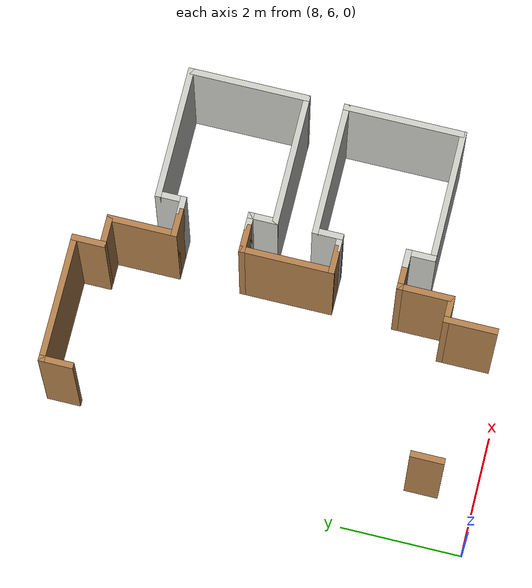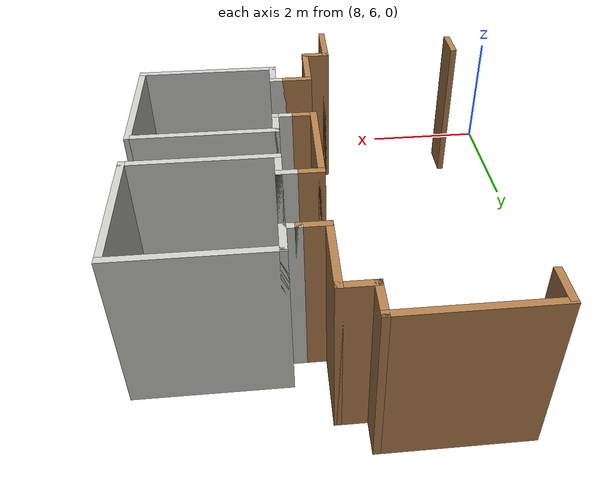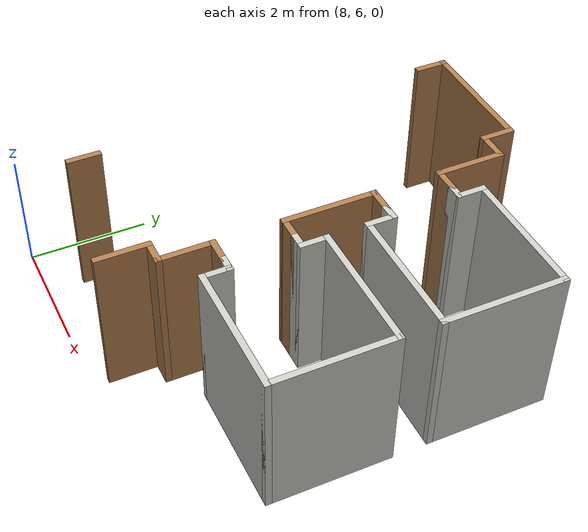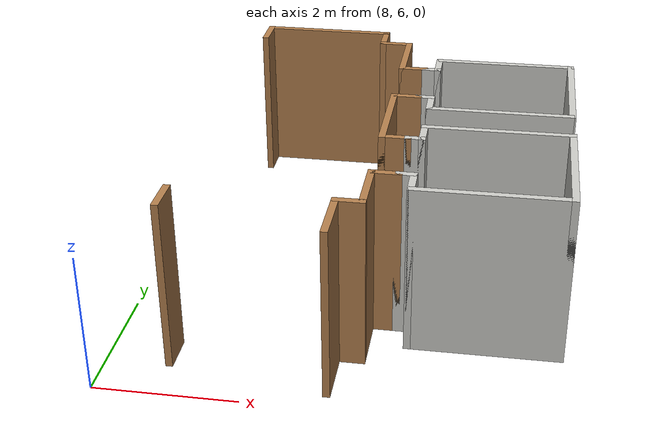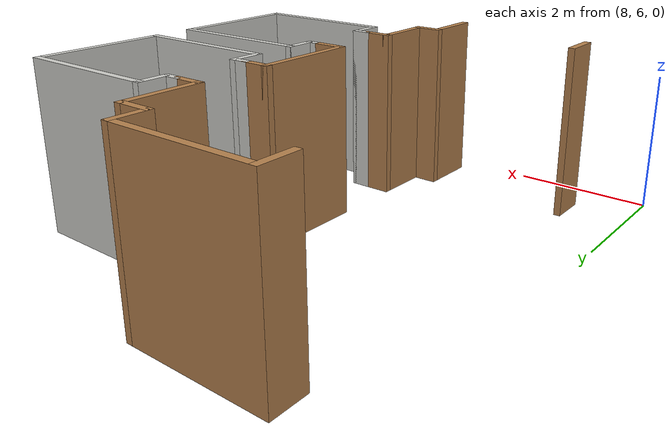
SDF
<sdf version="1.7">
 <model name="miraikan_3F_gate_and_elevator">
  <link name="Wall_151">
   <pose>6.6375 12.44 0 0 -0 1.5708</pose>
   <visual name="Wall_151_Visual">
    <pose>0 0 1.25 0 -0 0</pose>
    <geometry><box><size>0.56 0.1 2.5</size></box></geometry>
    <material>
     <script><uri>file://media/materials/scripts/gazebo.material</uri><name>Gazebo/Wood</name></script>
     <ambient>1 1 1 1</ambient>
     <shader type="pixel"/>
    </material>
    <meta><layer>0</layer></meta>
   </visual>
   <collision name="Wall_151_Collision">
    <pose>0 0 1.25 0 -0 0</pose>
    <geometry><box><size>0.56 0.1 2.5</size></box></geometry>
    <surface>
     <friction>
      <ode><mu>1</mu><mu2>1</mu2><fdir1>0 0 0</fdir1><slip1>0</slip1><slip2>0</slip2></ode>
      <torsional>
       <coefficient>1</coefficient>
       <patch_radius>0</patch_radius>
       <surface_radius>0</surface_radius>
       <use_patch_radius>1</use_patch_radius>
       <ode><slip>0</slip></ode>
      </torsional>
     </friction>
     <bounce><restitution_coefficient>0</restitution_coefficient><threshold>1e+06</threshold></bounce>
     <contact>
      <collide_without_contact>0</collide_without_contact>
      <collide_without_contact_bitmask>1</collide_without_contact_bitmask>
      <collide_bitmask>1</collide_bitmask>
      <ode>
       <soft_cfm>0</soft_cfm>
       <soft_erp>0.2</soft_erp>
       <kp>1e+13</kp>
       <kd>1</kd>
       <max_vel>0.01</max_vel>
       <min_depth>0</min_depth>
      </ode>
      <bullet>
       <split_impulse>1</split_impulse>
       <split_impulse_penetration_threshold>-0.01</split_impulse_penetration_threshold>
       <soft_cfm>0</soft_cfm>
       <soft_erp>0.2</soft_erp>
       <kp>1e+13</kp>
       <kd>1</kd>
      </bullet>
     </contact>
    </surface>
   </collision>
  </link>
  <link name="Wall_155">
   <pose>8.6575 12.44 0 0 0 -1.5708</pose>
   <visual name="Wall_155_Visual">
    <pose>0 0 1.25 0 -0 0</pose>
    <geometry><box><size>0.56 0.1 2.5</size></box></geometry>
    <material>
     <script><uri>file://media/materials/scripts/gazebo.material</uri><name>Gazebo/Wood</name></script>
     <ambient>1 1 1 1</ambient>
     <shader type="pixel"/>
    </material>
    <meta><layer>0</layer></meta>
   </visual>
   <collision name="Wall_155_Collision">
    <pose>0 0 1.25 0 -0 0</pose>
    <geometry><box><size>0.56 0.1 2.5</size></box></geometry>
    <surface>
     <friction>
      <ode><mu>1</mu><mu2>1</mu2><fdir1>0 0 0</fdir1><slip1>0</slip1><slip2>0</slip2></ode>
      <torsional>
       <coefficient>1</coefficient>
       <patch_radius>0</patch_radius>
       <surface_radius>0</surface_radius>
       <use_patch_radius>1</use_patch_radius>
       <ode><slip>0</slip></ode>
      </torsional>
     </friction>
     <bounce><restitution_coefficient>0</restitution_coefficient><threshold>1e+06</threshold></bounce>
     <contact>
      <collide_without_contact>0</collide_without_contact>
      <collide_without_contact_bitmask>1</collide_without_contact_bitmask>
      <collide_bitmask>1</collide_bitmask>
      <ode>
       <soft_cfm>0</soft_cfm>
       <soft_erp>0.2</soft_erp>
       <kp>1e+13</kp>
       <kd>1</kd>
       <max_vel>0.01</max_vel>
       <min_depth>0</min_depth>
      </ode>
      <bullet>
       <split_impulse>1</split_impulse>
       <split_impulse_penetration_threshold>-0.01</split_impulse_penetration_threshold>
       <soft_cfm>0</soft_cfm>
       <soft_erp>0.2</soft_erp>
       <kp>1e+13</kp>
       <kd>1</kd>
      </bullet>
     </contact>
    </surface>
   </collision>
  </link>
  <link name="Wall_157">
   <pose>8.8775 12.21 0 0 -0 0</pose>
   <visual name="Wall_157_Visual">
    <pose>0 0 1.25 0 -0 0</pose>
    <geometry><box><size>0.54 0.1 2.5</size></box></geometry>
    <material>
     <script><uri>file://media/materials/scripts/gazebo.material</uri><name>Gazebo/Wood</name></script>
     <ambient>1 1 1 1</ambient>
     <shader type="pixel"/>
    </material>
    <meta><layer>0</layer></meta>
   </visual>
   <collision name="Wall_157_Collision">
    <pose>0 0 1.25 0 -0 0</pose>
    <geometry><box><size>0.54 0.1 2.5</size></box></geometry>
    <surface>
     <friction>
      <ode><mu>1</mu><mu2>1</mu2><fdir1>0 0 0</fdir1><slip1>0</slip1><slip2>0</slip2></ode>
      <torsional>
       <coefficient>1</coefficient>
       <patch_radius>0</patch_radius>
       <surface_radius>0</surface_radius>
       <use_patch_radius>1</use_patch_radius>
       <ode><slip>0</slip></ode>
      </torsional>
     </friction>
     <bounce><restitution_coefficient>0</restitution_coefficient><threshold>1e+06</threshold></bounce>
     <contact>
      <collide_without_contact>0</collide_without_contact>
      <collide_without_contact_bitmask>1</collide_without_contact_bitmask>
      <collide_bitmask>1</collide_bitmask>
      <ode>
       <soft_cfm>0</soft_cfm>
       <soft_erp>0.2</soft_erp>
       <kp>1e+13</kp>
       <kd>1</kd>
       <max_vel>0.01</max_vel>
       <min_depth>0</min_depth>
      </ode>
      <bullet>
       <split_impulse>1</split_impulse>
       <split_impulse_penetration_threshold>-0.01</split_impulse_penetration_threshold>
       <soft_cfm>0</soft_cfm>
       <soft_erp>0.2</soft_erp>
       <kp>1e+13</kp>
       <kd>1</kd>
      </bullet>
     </contact>
    </surface>
   </collision>
  </link>
  <link name="Wall_159">
   <pose>9.0975 11.685 0 0 0 -1.5708</pose>
   <visual name="Wall_159_Visual">
    <pose>0 0 1.25 0 -0 0</pose>
    <geometry><box><size>1.15 0.1 2.5</size></box></geometry>
    <material>
     <script><uri>file://media/materials/scripts/gazebo.material</uri><name>Gazebo/Wood</name></script>
     <ambient>1 1 1 1</ambient>
     <shader type="pixel"/>
    </material>
    <meta><layer>0</layer></meta>
   </visual>
   <collision name="Wall_159_Collision">
    <pose>0 0 1.25 0 -0 0</pose>
    <geometry><box><size>1.15 0.1 2.5</size></box></geometry>
    <surface>
     <friction>
      <ode><mu>1</mu><mu2>1</mu2><fdir1>0 0 0</fdir1><slip1>0</slip1><slip2>0</slip2></ode>
      <torsional>
       <coefficient>1</coefficient>
       <patch_radius>0</patch_radius>
       <surface_radius>0</surface_radius>
       <use_patch_radius>1</use_patch_radius>
       <ode><slip>0</slip></ode>
      </torsional>
     </friction>
     <bounce><restitution_coefficient>0</restitution_coefficient><threshold>1e+06</threshold></bounce>
     <contact>
      <collide_without_contact>0</collide_without_contact>
      <collide_without_contact_bitmask>1</collide_without_contact_bitmask>
      <collide_bitmask>1</collide_bitmask>
      <ode>
       <soft_cfm>0</soft_cfm>
       <soft_erp>0.2</soft_erp>
       <kp>1e+13</kp>
       <kd>1</kd>
       <max_vel>0.01</max_vel>
       <min_depth>0</min_depth>
      </ode>
      <bullet>
       <split_impulse>1</split_impulse>
       <split_impulse_penetration_threshold>-0.01</split_impulse_penetration_threshold>
       <soft_cfm>0</soft_cfm>
       <soft_erp>0.2</soft_erp>
       <kp>1e+13</kp>
       <kd>1</kd>
      </bullet>
     </contact>
    </surface>
   </collision>
  </link>
  <link name="Wall_161">
   <pose>9.2825 11.16 0 0 -0 0</pose>
   <visual name="Wall_161_Visual">
    <pose>0 0 1.25 0 -0 0</pose>
    <geometry><box><size>0.47 0.1 2.5</size></box></geometry>
    <material>
     <script><uri>file://media/materials/scripts/gazebo.material</uri><name>Gazebo/Wood</name></script>
     <ambient>1 1 1 1</ambient>
     <shader type="pixel"/>
    </material>
    <meta><layer>0</layer></meta>
   </visual>
   <collision name="Wall_161_Collision">
    <pose>0 0 1.25 0 -0 0</pose>
    <geometry><box><size>0.47 0.1 2.5</size></box></geometry>
    <surface>
     <friction>
      <ode><mu>1</mu><mu2>1</mu2><fdir1>0 0 0</fdir1><slip1>0</slip1><slip2>0</slip2></ode>
      <torsional>
       <coefficient>1</coefficient>
       <patch_radius>0</patch_radius>
       <surface_radius>0</surface_radius>
       <use_patch_radius>1</use_patch_radius>
       <ode><slip>0</slip></ode>
      </torsional>
     </friction>
     <bounce><restitution_coefficient>0</restitution_coefficient><threshold>1e+06</threshold></bounce>
     <contact>
      <collide_without_contact>0</collide_without_contact>
      <collide_without_contact_bitmask>1</collide_without_contact_bitmask>
      <collide_bitmask>1</collide_bitmask>
      <ode>
       <soft_cfm>0</soft_cfm>
       <soft_erp>0.2</soft_erp>
       <kp>1e+13</kp>
       <kd>1</kd>
       <max_vel>0.01</max_vel>
       <min_depth>0</min_depth>
      </ode>
      <bullet>
       <split_impulse>1</split_impulse>
       <split_impulse_penetration_threshold>-0.01</split_impulse_penetration_threshold>
       <soft_cfm>0</soft_cfm>
       <soft_erp>0.2</soft_erp>
       <kp>1e+13</kp>
       <kd>1</kd>
      </bullet>
     </contact>
    </surface>
   </collision>
  </link>
  <link name="Wall_165">
   <pose>9.2825 10.06 0 0 -0 3.14159</pose>
   <visual name="Wall_165_Visual">
    <pose>0 0 1.25 0 -0 0</pose>
    <geometry><box><size>0.47 0.1 2.5</size></box></geometry>
    <material>
     <script><uri>file://media/materials/scripts/gazebo.material</uri><name>Gazebo/Wood</name></script>
     <ambient>1 1 1 1</ambient>
     <shader type="pixel"/>
    </material>
    <meta><layer>0</layer></meta>
   </visual>
   <collision name="Wall_165_Collision">
    <pose>0 0 1.25 0 -0 0</pose>
    <geometry><box><size>0.47 0.1 2.5</size></box></geometry>
    <surface>
     <friction>
      <ode><mu>1</mu><mu2>1</mu2><fdir1>0 0 0</fdir1><slip1>0</slip1><slip2>0</slip2></ode>
      <torsional>
       <coefficient>1</coefficient>
       <patch_radius>0</patch_radius>
       <surface_radius>0</surface_radius>
       <use_patch_radius>1</use_patch_radius>
       <ode><slip>0</slip></ode>
      </torsional>
     </friction>
     <bounce><restitution_coefficient>0</restitution_coefficient><threshold>1e+06</threshold></bounce>
     <contact>
      <collide_without_contact>0</collide_without_contact>
      <collide_without_contact_bitmask>1</collide_without_contact_bitmask>
      <collide_bitmask>1</collide_bitmask>
      <ode>
       <soft_cfm>0</soft_cfm>
       <soft_erp>0.2</soft_erp>
       <kp>1e+13</kp>
       <kd>1</kd>
       <max_vel>0.01</max_vel>
       <min_depth>0</min_depth>
      </ode>
      <bullet>
       <split_impulse>1</split_impulse>
       <split_impulse_penetration_threshold>-0.01</split_impulse_penetration_threshold>
       <soft_cfm>0</soft_cfm>
       <soft_erp>0.2</soft_erp>
       <kp>1e+13</kp>
       <kd>1</kd>
      </bullet>
     </contact>
    </surface>
   </collision>
  </link>
  <link name="Wall_167">
   <pose>9.0975 9.335 0 0 0 -1.5708</pose>
   <visual name="Wall_167_Visual">
    <pose>0 0 1.25 0 -0 0</pose>
    <geometry><box><size>1.55 0.1 2.5</size></box></geometry>
    <material>
     <script><uri>file://media/materials/scripts/gazebo.material</uri><name>Gazebo/Wood</name></script>
     <ambient>1 1 1 1</ambient>
     <shader type="pixel"/>
    </material>
    <meta><layer>0</layer></meta>
   </visual>
   <collision name="Wall_167_Collision">
    <pose>0 0 1.25 0 -0 0</pose>
    <geometry><box><size>1.55 0.1 2.5</size></box></geometry>
    <surface>
     <friction>
      <ode><mu>1</mu><mu2>1</mu2><fdir1>0 0 0</fdir1><slip1>0</slip1><slip2>0</slip2></ode>
      <torsional>
       <coefficient>1</coefficient>
       <patch_radius>0</patch_radius>
       <surface_radius>0</surface_radius>
       <use_patch_radius>1</use_patch_radius>
       <ode><slip>0</slip></ode>
      </torsional>
     </friction>
     <bounce><restitution_coefficient>0</restitution_coefficient><threshold>1e+06</threshold></bounce>
     <contact>
      <collide_without_contact>0</collide_without_contact>
      <collide_without_contact_bitmask>1</collide_without_contact_bitmask>
      <collide_bitmask>1</collide_bitmask>
      <ode>
       <soft_cfm>0</soft_cfm>
       <soft_erp>0.2</soft_erp>
       <kp>1e+13</kp>
       <kd>1</kd>
       <max_vel>0.01</max_vel>
       <min_depth>0</min_depth>
      </ode>
      <bullet>
       <split_impulse>1</split_impulse>
       <split_impulse_penetration_threshold>-0.01</split_impulse_penetration_threshold>
       <soft_cfm>0</soft_cfm>
       <soft_erp>0.2</soft_erp>
       <kp>1e+13</kp>
       <kd>1</kd>
      </bullet>
     </contact>
    </surface>
   </collision>
  </link>
  <link name="Wall_169">
   <pose>9.2825 8.61 0 0 -0 0</pose>
   <visual name="Wall_169_Visual">
    <pose>0 0 1.25 0 -0 0</pose>
    <geometry><box><size>0.47 0.1 2.5</size></box></geometry>
    <material>
     <script><uri>file://media/materials/scripts/gazebo.material</uri><name>Gazebo/Wood</name></script>
     <ambient>1 1 1 1</ambient>
     <shader type="pixel"/>
    </material>
    <meta><layer>0</layer></meta>
   </visual>
   <collision name="Wall_169_Collision">
    <pose>0 0 1.25 0 -0 0</pose>
    <geometry><box><size>0.47 0.1 2.5</size></box></geometry>
    <surface>
     <friction>
      <ode><mu>1</mu><mu2>1</mu2><fdir1>0 0 0</fdir1><slip1>0</slip1><slip2>0</slip2></ode>
      <torsional>
       <coefficient>1</coefficient>
       <patch_radius>0</patch_radius>
       <surface_radius>0</surface_radius>
       <use_patch_radius>1</use_patch_radius>
       <ode><slip>0</slip></ode>
      </torsional>
     </friction>
     <bounce><restitution_coefficient>0</restitution_coefficient><threshold>1e+06</threshold></bounce>
     <contact>
      <collide_without_contact>0</collide_without_contact>
      <collide_without_contact_bitmask>1</collide_without_contact_bitmask>
      <collide_bitmask>1</collide_bitmask>
      <ode>
       <soft_cfm>0</soft_cfm>
       <soft_erp>0.2</soft_erp>
       <kp>1e+13</kp>
       <kd>1</kd>
       <max_vel>0.01</max_vel>
       <min_depth>0</min_depth>
      </ode>
      <bullet>
       <split_impulse>1</split_impulse>
       <split_impulse_penetration_threshold>-0.01</split_impulse_penetration_threshold>
       <soft_cfm>0</soft_cfm>
       <soft_erp>0.2</soft_erp>
       <kp>1e+13</kp>
       <kd>1</kd>
      </bullet>
     </contact>
    </surface>
   </collision>
  </link>
  <link name="Wall_173">
   <pose>9.2825 7.51 0 0 -0 3.14159</pose>
   <visual name="Wall_173_Visual">
    <pose>0 0 1.25 0 -0 0</pose>
    <geometry><box><size>0.47 0.1 2.5</size></box></geometry>
    <material>
     <script><uri>file://media/materials/scripts/gazebo.material</uri><name>Gazebo/Wood</name></script>
     <ambient>1 1 1 1</ambient>
     <shader type="pixel"/>
    </material>
    <meta><layer>0</layer></meta>
   </visual>
   <collision name="Wall_173_Collision">
    <pose>0 0 1.25 0 -0 0</pose>
    <geometry><box><size>0.47 0.1 2.5</size></box></geometry>
    <surface>
     <friction>
      <ode><mu>1</mu><mu2>1</mu2><fdir1>0 0 0</fdir1><slip1>0</slip1><slip2>0</slip2></ode>
      <torsional>
       <coefficient>1</coefficient>
       <patch_radius>0</patch_radius>
       <surface_radius>0</surface_radius>
       <use_patch_radius>1</use_patch_radius>
       <ode><slip>0</slip></ode>
      </torsional>
     </friction>
     <bounce><restitution_coefficient>0</restitution_coefficient><threshold>1e+06</threshold></bounce>
     <contact>
      <collide_without_contact>0</collide_without_contact>
      <collide_without_contact_bitmask>1</collide_without_contact_bitmask>
      <collide_bitmask>1</collide_bitmask>
      <ode>
       <soft_cfm>0</soft_cfm>
       <soft_erp>0.2</soft_erp>
       <kp>1e+13</kp>
       <kd>1</kd>
       <max_vel>0.01</max_vel>
       <min_depth>0</min_depth>
      </ode>
      <bullet>
       <split_impulse>1</split_impulse>
       <split_impulse_penetration_threshold>-0.01</split_impulse_penetration_threshold>
       <soft_cfm>0</soft_cfm>
       <soft_erp>0.2</soft_erp>
       <kp>1e+13</kp>
       <kd>1</kd>
      </bullet>
     </contact>
    </surface>
   </collision>
  </link>
  <link name="Wall_178">
   <pose>9.0975 7.095 0 0 0 -1.5708</pose>
   <visual name="Wall_178_Visual">
    <pose>0 0 1.25 0 -0 0</pose>
    <geometry><box><size>0.93 0.1 2.5</size></box></geometry>
    <material>
     <script><uri>file://media/materials/scripts/gazebo.material</uri><name>Gazebo/Wood</name></script>
     <ambient>1 1 1 1</ambient>
     <shader type="pixel"/>
    </material>
    <meta><layer>0</layer></meta>
   </visual>
   <collision name="Wall_178_Collision">
    <pose>0 0 1.25 0 -0 0</pose>
    <geometry><box><size>0.93 0.1 2.5</size></box></geometry>
    <surface>
     <friction>
      <ode><mu>1</mu><mu2>1</mu2><fdir1>0 0 0</fdir1><slip1>0</slip1><slip2>0</slip2></ode>
      <torsional>
       <coefficient>1</coefficient>
       <patch_radius>0</patch_radius>
       <surface_radius>0</surface_radius>
       <use_patch_radius>1</use_patch_radius>
       <ode><slip>0</slip></ode>
      </torsional>
     </friction>
     <bounce><restitution_coefficient>0</restitution_coefficient><threshold>1e+06</threshold></bounce>
     <contact>
      <collide_without_contact>0</collide_without_contact>
      <collide_without_contact_bitmask>1</collide_without_contact_bitmask>
      <collide_bitmask>1</collide_bitmask>
      <ode>
       <soft_cfm>0</soft_cfm>
       <soft_erp>0.2</soft_erp>
       <kp>1e+13</kp>
       <kd>1</kd>
       <max_vel>0.01</max_vel>
       <min_depth>0</min_depth>
      </ode>
      <bullet>
       <split_impulse>1</split_impulse>
       <split_impulse_penetration_threshold>-0.01</split_impulse_penetration_threshold>
       <soft_cfm>0</soft_cfm>
       <soft_erp>0.2</soft_erp>
       <kp>1e+13</kp>
       <kd>1</kd>
      </bullet>
     </contact>
    </surface>
   </collision>
  </link>
  <link name="Wall_264">
   <pose>8.9225 6.68 0 0 -0 3.14159</pose>
   <visual name="Wall_264_Visual">
    <pose>0 0 1.25 0 -0 0</pose>
    <geometry><box><size>0.45 0.1 2.5</size></box></geometry>
    <material>
     <script><uri>file://media/materials/scripts/gazebo.material</uri><name>Gazebo/Wood</name></script>
     <ambient>1 1 1 1</ambient>
     <shader type="pixel"/>
    </material>
    <meta><layer>0</layer></meta>
   </visual>
   <collision name="Wall_264_Collision">
    <pose>0 0 1.25 0 -0 0</pose>
    <geometry><box><size>0.45 0.1 2.5</size></box></geometry>
    <surface>
     <friction>
      <ode><mu>1</mu><mu2>1</mu2><fdir1>0 0 0</fdir1><slip1>0</slip1><slip2>0</slip2></ode>
      <torsional>
       <coefficient>1</coefficient>
       <patch_radius>0</patch_radius>
       <surface_radius>0</surface_radius>
       <use_patch_radius>1</use_patch_radius>
       <ode><slip>0</slip></ode>
      </torsional>
     </friction>
     <bounce><restitution_coefficient>0</restitution_coefficient><threshold>1e+06</threshold></bounce>
     <contact>
      <collide_without_contact>0</collide_without_contact>
      <collide_without_contact_bitmask>1</collide_without_contact_bitmask>
      <collide_bitmask>1</collide_bitmask>
      <ode>
       <soft_cfm>0</soft_cfm>
       <soft_erp>0.2</soft_erp>
       <kp>1e+13</kp>
       <kd>1</kd>
       <max_vel>0.01</max_vel>
       <min_depth>0</min_depth>
      </ode>
      <bullet>
       <split_impulse>1</split_impulse>
       <split_impulse_penetration_threshold>-0.01</split_impulse_penetration_threshold>
       <soft_cfm>0</soft_cfm>
       <soft_erp>0.2</soft_erp>
       <kp>1e+13</kp>
       <kd>1</kd>
      </bullet>
     </contact>
    </surface>
   </collision>
  </link>
  <link name="Wall_266">
   <pose>8.7475 6.29 0 0 0 -1.5708</pose>
   <visual name="Wall_266_Visual">
    <pose>0 0 1.25 0 -0 0</pose>
    <geometry><box><size>0.88 0.1 2.5</size></box></geometry>
    <material>
     <script><uri>file://media/materials/scripts/gazebo.material</uri><name>Gazebo/Wood</name></script>
     <ambient>1 1 1 1</ambient>
     <shader type="pixel"/>
    </material>
    <meta><layer>0</layer></meta>
   </visual>
   <collision name="Wall_266_Collision">
    <pose>0 0 1.25 0 -0 0</pose>
    <geometry><box><size>0.88 0.1 2.5</size></box></geometry>
    <surface>
     <friction>
      <ode><mu>1</mu><mu2>1</mu2><fdir1>0 0 0</fdir1><slip1>0</slip1><slip2>0</slip2></ode>
      <torsional>
       <coefficient>1</coefficient>
       <patch_radius>0</patch_radius>
       <surface_radius>0</surface_radius>
       <use_patch_radius>1</use_patch_radius>
       <ode><slip>0</slip></ode>
      </torsional>
     </friction>
     <bounce><restitution_coefficient>0</restitution_coefficient><threshold>1e+06</threshold></bounce>
     <contact>
      <collide_without_contact>0</collide_without_contact>
      <collide_without_contact_bitmask>1</collide_without_contact_bitmask>
      <collide_bitmask>1</collide_bitmask>
      <ode>
       <soft_cfm>0</soft_cfm>
       <soft_erp>0.2</soft_erp>
       <kp>1e+13</kp>
       <kd>1</kd>
       <max_vel>0.01</max_vel>
       <min_depth>0</min_depth>
      </ode>
      <bullet>
       <split_impulse>1</split_impulse>
       <split_impulse_penetration_threshold>-0.01</split_impulse_penetration_threshold>
       <soft_cfm>0</soft_cfm>
       <soft_erp>0.2</soft_erp>
       <kp>1e+13</kp>
       <kd>1</kd>
      </bullet>
     </contact>
    </surface>
   </collision>
  </link>
  <link name="Wall_282">
   <pose>6.5275 6.4675 0 0 -0 1.5708</pose>
   <visual name="Wall_282_Visual">
    <pose>0 0 1.25 0 -0 0</pose>
    <geometry><box><size>0.555 0.1 2.5</size></box></geometry>
    <material>
     <script><uri>file://media/materials/scripts/gazebo.material</uri><name>Gazebo/Wood</name></script>
     <ambient>1 1 1 1</ambient>
     <shader type="pixel"/>
    </material>
    <meta><layer>0</layer></meta>
   </visual>
   <collision name="Wall_282_Collision">
    <pose>0 0 1.25 0 -0 0</pose>
    <geometry><box><size>0.555 0.1 2.5</size></box></geometry>
    <surface>
     <friction>
      <ode><mu>1</mu><mu2>1</mu2><fdir1>0 0 0</fdir1><slip1>0</slip1><slip2>0</slip2></ode>
      <torsional>
       <coefficient>1</coefficient>
       <patch_radius>0</patch_radius>
       <surface_radius>0</surface_radius>
       <use_patch_radius>1</use_patch_radius>
       <ode><slip>0</slip></ode>
      </torsional>
     </friction>
     <bounce><restitution_coefficient>0</restitution_coefficient><threshold>1e+06</threshold></bounce>
     <contact>
      <collide_without_contact>0</collide_without_contact>
      <collide_without_contact_bitmask>1</collide_without_contact_bitmask>
      <collide_bitmask>1</collide_bitmask>
      <ode>
       <soft_cfm>0</soft_cfm>
       <soft_erp>0.2</soft_erp>
       <kp>1e+13</kp>
       <kd>1</kd>
       <max_vel>0.01</max_vel>
       <min_depth>0</min_depth>
      </ode>
      <bullet>
       <split_impulse>1</split_impulse>
       <split_impulse_penetration_threshold>-0.01</split_impulse_penetration_threshold>
       <soft_cfm>0</soft_cfm>
       <soft_erp>0.2</soft_erp>
       <kp>1e+13</kp>
       <kd>1</kd>
      </bullet>
     </contact>
    </surface>
   </collision>
  </link>
  <link name="Wall_454">
   <pose>9.5675 8.61 0 0 -0 0</pose>
   <visual name="Wall_454_Visual">
    <pose>0 0 1.25 0 -0 0</pose>
    <geometry><box><size>0.3 0.1 2.5</size></box></geometry>
    <material>
     <script><uri>file://media/materials/scripts/gazebo.material</uri><name>Gazebo/CeilingTiled</name></script>
     <ambient>1 1 1 1</ambient>
     <shader type="pixel"/>
    </material>
    <meta><layer>0</layer></meta>
   </visual>
   <collision name="Wall_454_Collision">
    <pose>0 0 1.25 0 -0 0</pose>
    <geometry><box><size>0.3 0.1 2.5</size></box></geometry>
    <surface>
     <friction>
      <ode><mu>1</mu><mu2>1</mu2><fdir1>0 0 0</fdir1><slip1>0</slip1><slip2>0</slip2></ode>
      <torsional>
       <coefficient>1</coefficient>
       <patch_radius>0</patch_radius>
       <surface_radius>0</surface_radius>
       <use_patch_radius>1</use_patch_radius>
       <ode><slip>0</slip></ode>
      </torsional>
     </friction>
     <bounce><restitution_coefficient>0</restitution_coefficient><threshold>1e+06</threshold></bounce>
     <contact>
      <collide_without_contact>0</collide_without_contact>
      <collide_without_contact_bitmask>1</collide_without_contact_bitmask>
      <collide_bitmask>1</collide_bitmask>
      <ode>
       <soft_cfm>0</soft_cfm>
       <soft_erp>0.2</soft_erp>
       <kp>1e+13</kp>
       <kd>1</kd>
       <max_vel>0.01</max_vel>
       <min_depth>0</min_depth>
      </ode>
      <bullet>
       <split_impulse>1</split_impulse>
       <split_impulse_penetration_threshold>-0.01</split_impulse_penetration_threshold>
       <soft_cfm>0</soft_cfm>
       <soft_erp>0.2</soft_erp>
       <kp>1e+13</kp>
       <kd>1</kd>
      </bullet>
     </contact>
    </surface>
   </collision>
  </link>
  <link name="Wall_457">
   <pose>9.6675 8.81 0 0 -0 1.5708</pose>
   <visual name="Wall_457_Visual">
    <pose>0 0 1.25 0 -0 0</pose>
    <geometry><box><size>0.5 0.1 2.5</size></box></geometry>
    <material>
     <script><uri>file://media/materials/scripts/gazebo.material</uri><name>Gazebo/CeilingTiled</name></script>
     <ambient>1 1 1 1</ambient>
     <shader type="pixel"/>
    </material>
    <meta><layer>0</layer></meta>
   </visual>
   <collision name="Wall_457_Collision">
    <pose>0 0 1.25 0 -0 0</pose>
    <geometry><box><size>0.5 0.1 2.5</size></box></geometry>
    <surface>
     <friction>
      <ode><mu>1</mu><mu2>1</mu2><fdir1>0 0 0</fdir1><slip1>0</slip1><slip2>0</slip2></ode>
      <torsional>
       <coefficient>1</coefficient>
       <patch_radius>0</patch_radius>
       <surface_radius>0</surface_radius>
       <use_patch_radius>1</use_patch_radius>
       <ode><slip>0</slip></ode>
      </torsional>
     </friction>
     <bounce><restitution_coefficient>0</restitution_coefficient><threshold>1e+06</threshold></bounce>
     <contact>
      <collide_without_contact>0</collide_without_contact>
      <collide_without_contact_bitmask>1</collide_without_contact_bitmask>
      <collide_bitmask>1</collide_bitmask>
      <ode>
       <soft_cfm>0</soft_cfm>
       <soft_erp>0.2</soft_erp>
       <kp>1e+13</kp>
       <kd>1</kd>
       <max_vel>0.01</max_vel>
       <min_depth>0</min_depth>
      </ode>
      <bullet>
       <split_impulse>1</split_impulse>
       <split_impulse_penetration_threshold>-0.01</split_impulse_penetration_threshold>
       <soft_cfm>0</soft_cfm>
       <soft_erp>0.2</soft_erp>
       <kp>1e+13</kp>
       <kd>1</kd>
      </bullet>
     </contact>
    </surface>
   </collision>
  </link>
  <link name="Wall_459">
   <pose>10.7175 9.01 0 0 -0 0</pose>
   <visual name="Wall_459_Visual">
    <pose>0 0 1.25 0 -0 0</pose>
    <geometry><box><size>2.2 0.1 2.5</size></box></geometry>
    <material>
     <script><uri>file://media/materials/scripts/gazebo.material</uri><name>Gazebo/CeilingTiled</name></script>
     <ambient>1 1 1 1</ambient>
     <shader type="pixel"/>
    </material>
    <meta><layer>0</layer></meta>
   </visual>
   <collision name="Wall_459_Collision">
    <pose>0 0 1.25 0 -0 0</pose>
    <geometry><box><size>2.2 0.1 2.5</size></box></geometry>
    <surface>
     <friction>
      <ode><mu>1</mu><mu2>1</mu2><fdir1>0 0 0</fdir1><slip1>0</slip1><slip2>0</slip2></ode>
      <torsional>
       <coefficient>1</coefficient>
       <patch_radius>0</patch_radius>
       <surface_radius>0</surface_radius>
       <use_patch_radius>1</use_patch_radius>
       <ode><slip>0</slip></ode>
      </torsional>
     </friction>
     <bounce><restitution_coefficient>0</restitution_coefficient><threshold>1e+06</threshold></bounce>
     <contact>
      <collide_without_contact>0</collide_without_contact>
      <collide_without_contact_bitmask>1</collide_without_contact_bitmask>
      <collide_bitmask>1</collide_bitmask>
      <ode>
       <soft_cfm>0</soft_cfm>
       <soft_erp>0.2</soft_erp>
       <kp>1e+13</kp>
       <kd>1</kd>
       <max_vel>0.01</max_vel>
       <min_depth>0</min_depth>
      </ode>
      <bullet>
       <split_impulse>1</split_impulse>
       <split_impulse_penetration_threshold>-0.01</split_impulse_penetration_threshold>
       <soft_cfm>0</soft_cfm>
       <soft_erp>0.2</soft_erp>
       <kp>1e+13</kp>
       <kd>1</kd>
      </bullet>
     </contact>
    </surface>
   </collision>
  </link>
  <link name="Wall_461">
   <pose>9.5675 7.51 0 0 -0 0</pose>
   <visual name="Wall_461_Visual">
    <pose>0 0 1.25 0 -0 0</pose>
    <geometry><box><size>0.3 0.1 2.5</size></box></geometry>
    <material>
     <script><uri>file://media/materials/scripts/gazebo.material</uri><name>Gazebo/CeilingTiled</name></script>
     <ambient>1 1 1 1</ambient>
     <shader type="pixel"/>
    </material>
    <meta><layer>0</layer></meta>
   </visual>
   <collision name="Wall_461_Collision">
    <pose>0 0 1.25 0 -0 0</pose>
    <geometry><box><size>0.3 0.1 2.5</size></box></geometry>
    <surface>
     <friction>
      <ode><mu>1</mu><mu2>1</mu2><fdir1>0 0 0</fdir1><slip1>0</slip1><slip2>0</slip2></ode>
      <torsional>
       <coefficient>1</coefficient>
       <patch_radius>0</patch_radius>
       <surface_radius>0</surface_radius>
       <use_patch_radius>1</use_patch_radius>
       <ode><slip>0</slip></ode>
      </torsional>
     </friction>
     <bounce><restitution_coefficient>0</restitution_coefficient><threshold>1e+06</threshold></bounce>
     <contact>
      <collide_without_contact>0</collide_without_contact>
      <collide_without_contact_bitmask>1</collide_without_contact_bitmask>
      <collide_bitmask>1</collide_bitmask>
      <ode>
       <soft_cfm>0</soft_cfm>
       <soft_erp>0.2</soft_erp>
       <kp>1e+13</kp>
       <kd>1</kd>
       <max_vel>0.01</max_vel>
       <min_depth>0</min_depth>
      </ode>
      <bullet>
       <split_impulse>1</split_impulse>
       <split_impulse_penetration_threshold>-0.01</split_impulse_penetration_threshold>
       <soft_cfm>0</soft_cfm>
       <soft_erp>0.2</soft_erp>
       <kp>1e+13</kp>
       <kd>1</kd>
      </bullet>
     </contact>
    </surface>
   </collision>
  </link>
  <link name="Wall_464">
   <pose>9.6675 7.31 0 0 0 -1.5708</pose>
   <visual name="Wall_464_Visual">
    <pose>0 0 1.25 0 -0 0</pose>
    <geometry><box><size>0.5 0.1 2.5</size></box></geometry>
    <material>
     <script><uri>file://media/materials/scripts/gazebo.material</uri><name>Gazebo/CeilingTiled</name></script>
     <ambient>1 1 1 1</ambient>
     <shader type="pixel"/>
    </material>
    <meta><layer>0</layer></meta>
   </visual>
   <collision name="Wall_464_Collision">
    <pose>0 0 1.25 0 -0 0</pose>
    <geometry><box><size>0.5 0.1 2.5</size></box></geometry>
    <surface>
     <friction>
      <ode><mu>1</mu><mu2>1</mu2><fdir1>0 0 0</fdir1><slip1>0</slip1><slip2>0</slip2></ode>
      <torsional>
       <coefficient>1</coefficient>
       <patch_radius>0</patch_radius>
       <surface_radius>0</surface_radius>
       <use_patch_radius>1</use_patch_radius>
       <ode><slip>0</slip></ode>
      </torsional>
     </friction>
     <bounce><restitution_coefficient>0</restitution_coefficient><threshold>1e+06</threshold></bounce>
     <contact>
      <collide_without_contact>0</collide_without_contact>
      <collide_without_contact_bitmask>1</collide_without_contact_bitmask>
      <collide_bitmask>1</collide_bitmask>
      <ode>
       <soft_cfm>0</soft_cfm>
       <soft_erp>0.2</soft_erp>
       <kp>1e+13</kp>
       <kd>1</kd>
       <max_vel>0.01</max_vel>
       <min_depth>0</min_depth>
      </ode>
      <bullet>
       <split_impulse>1</split_impulse>
       <split_impulse_penetration_threshold>-0.01</split_impulse_penetration_threshold>
       <soft_cfm>0</soft_cfm>
       <soft_erp>0.2</soft_erp>
       <kp>1e+13</kp>
       <kd>1</kd>
      </bullet>
     </contact>
    </surface>
   </collision>
  </link>
  <link name="Wall_467">
   <pose>10.7175 7.11 0 0 -0 0</pose>
   <visual name="Wall_467_Visual">
    <pose>0 0 1.25 0 -0 0</pose>
    <geometry><box><size>2.2 0.1 2.5</size></box></geometry>
    <material>
     <script><uri>file://media/materials/scripts/gazebo.material</uri><name>Gazebo/CeilingTiled</name></script>
     <ambient>1 1 1 1</ambient>
     <shader type="pixel"/>
    </material>
    <meta><layer>0</layer></meta>
   </visual>
   <collision name="Wall_467_Collision">
    <pose>0 0 1.25 0 -0 0</pose>
    <geometry><box><size>2.2 0.1 2.5</size></box></geometry>
    <surface>
     <friction>
      <ode><mu>1</mu><mu2>1</mu2><fdir1>0 0 0</fdir1><slip1>0</slip1><slip2>0</slip2></ode>
      <torsional>
       <coefficient>1</coefficient>
       <patch_radius>0</patch_radius>
       <surface_radius>0</surface_radius>
       <use_patch_radius>1</use_patch_radius>
       <ode><slip>0</slip></ode>
      </torsional>
     </friction>
     <bounce><restitution_coefficient>0</restitution_coefficient><threshold>1e+06</threshold></bounce>
     <contact>
      <collide_without_contact>0</collide_without_contact>
      <collide_without_contact_bitmask>1</collide_without_contact_bitmask>
      <collide_bitmask>1</collide_bitmask>
      <ode>
       <soft_cfm>0</soft_cfm>
       <soft_erp>0.2</soft_erp>
       <kp>1e+13</kp>
       <kd>1</kd>
       <max_vel>0.01</max_vel>
       <min_depth>0</min_depth>
      </ode>
      <bullet>
       <split_impulse>1</split_impulse>
       <split_impulse_penetration_threshold>-0.01</split_impulse_penetration_threshold>
       <soft_cfm>0</soft_cfm>
       <soft_erp>0.2</soft_erp>
       <kp>1e+13</kp>
       <kd>1</kd>
      </bullet>
     </contact>
    </surface>
   </collision>
  </link>
  <link name="Wall_469">
   <pose>11.7675 8.06 0 0 0 -1.5708</pose>
   <visual name="Wall_469_Visual">
    <pose>0 0 1.25 0 -0 0</pose>
    <geometry><box><size>2 0.1 2.5</size></box></geometry>
    <material>
     <script><uri>file://media/materials/scripts/gazebo.material</uri><name>Gazebo/CeilingTiled</name></script>
     <ambient>1 1 1 1</ambient>
     <shader type="pixel"/>
    </material>
    <meta><layer>0</layer></meta>
   </visual>
   <collision name="Wall_469_Collision">
    <pose>0 0 1.25 0 -0 0</pose>
    <geometry><box><size>2 0.1 2.5</size></box></geometry>
    <surface>
     <friction>
      <ode><mu>1</mu><mu2>1</mu2><fdir1>0 0 0</fdir1><slip1>0</slip1><slip2>0</slip2></ode>
      <torsional>
       <coefficient>1</coefficient>
       <patch_radius>0</patch_radius>
       <surface_radius>0</surface_radius>
       <use_patch_radius>1</use_patch_radius>
       <ode><slip>0</slip></ode>
      </torsional>
     </friction>
     <bounce><restitution_coefficient>0</restitution_coefficient><threshold>1e+06</threshold></bounce>
     <contact>
      <collide_without_contact>0</collide_without_contact>
      <collide_without_contact_bitmask>1</collide_without_contact_bitmask>
      <collide_bitmask>1</collide_bitmask>
      <ode>
       <soft_cfm>0</soft_cfm>
       <soft_erp>0.2</soft_erp>
       <kp>1e+13</kp>
       <kd>1</kd>
       <max_vel>0.01</max_vel>
       <min_depth>0</min_depth>
      </ode>
      <bullet>
       <split_impulse>1</split_impulse>
       <split_impulse_penetration_threshold>-0.01</split_impulse_penetration_threshold>
       <soft_cfm>0</soft_cfm>
       <soft_erp>0.2</soft_erp>
       <kp>1e+13</kp>
       <kd>1</kd>
      </bullet>
     </contact>
    </surface>
   </collision>
  </link>
  <link name="Wall_475">
   <pose>7.6475 12.67 0 0 -0 3.14159</pose>
   <visual name="Wall_475_Visual">
    <pose>0 0 1.25 0 -0 0</pose>
    <geometry><box><size>2.12 0.1 2.5</size></box></geometry>
    <material>
     <script><uri>file://media/materials/scripts/gazebo.material</uri><name>Gazebo/Wood</name></script>
     <ambient>1 1 1 1</ambient>
     <shader type="pixel"/>
    </material>
    <meta><layer>0</layer></meta>
   </visual>
   <collision name="Wall_475_Collision">
    <pose>0 0 1.25 0 -0 0</pose>
    <geometry><box><size>2.12 0.1 2.5</size></box></geometry>
    <surface>
     <friction>
      <ode><mu>1</mu><mu2>1</mu2><fdir1>0 0 0</fdir1><slip1>0</slip1><slip2>0</slip2></ode>
      <torsional>
       <coefficient>1</coefficient>
       <patch_radius>0</patch_radius>
       <surface_radius>0</surface_radius>
       <use_patch_radius>1</use_patch_radius>
       <ode><slip>0</slip></ode>
      </torsional>
     </friction>
     <bounce><restitution_coefficient>0</restitution_coefficient><threshold>1e+06</threshold></bounce>
     <contact>
      <collide_without_contact>0</collide_without_contact>
      <collide_without_contact_bitmask>1</collide_without_contact_bitmask>
      <collide_bitmask>1</collide_bitmask>
      <ode>
       <soft_cfm>0</soft_cfm>
       <soft_erp>0.2</soft_erp>
       <kp>1e+13</kp>
       <kd>1</kd>
       <max_vel>0.01</max_vel>
       <min_depth>0</min_depth>
      </ode>
      <bullet>
       <split_impulse>1</split_impulse>
       <split_impulse_penetration_threshold>-0.01</split_impulse_penetration_threshold>
       <soft_cfm>0</soft_cfm>
       <soft_erp>0.2</soft_erp>
       <kp>1e+13</kp>
       <kd>1</kd>
      </bullet>
     </contact>
    </surface>
   </collision>
  </link>
  <link name="Wall_479">
   <pose>9.5675 10.06 0 0 -0 0</pose>
   <visual name="Wall_479_Visual">
    <pose>0 0 1.25 0 -0 0</pose>
    <geometry><box><size>0.3 0.1 2.5</size></box></geometry>
    <material>
     <script><uri>file://media/materials/scripts/gazebo.material</uri><name>Gazebo/CeilingTiled</name></script>
     <ambient>1 1 1 1</ambient>
     <shader type="pixel"/>
    </material>
    <meta><layer>0</layer></meta>
   </visual>
   <collision name="Wall_479_Collision">
    <pose>0 0 1.25 0 -0 0</pose>
    <geometry><box><size>0.3 0.1 2.5</size></box></geometry>
    <surface>
     <friction>
      <ode><mu>1</mu><mu2>1</mu2><fdir1>0 0 0</fdir1><slip1>0</slip1><slip2>0</slip2></ode>
      <torsional>
       <coefficient>1</coefficient>
       <patch_radius>0</patch_radius>
       <surface_radius>0</surface_radius>
       <use_patch_radius>1</use_patch_radius>
       <ode><slip>0</slip></ode>
      </torsional>
     </friction>
     <bounce><restitution_coefficient>0</restitution_coefficient><threshold>1e+06</threshold></bounce>
     <contact>
      <collide_without_contact>0</collide_without_contact>
      <collide_without_contact_bitmask>1</collide_without_contact_bitmask>
      <collide_bitmask>1</collide_bitmask>
      <ode>
       <soft_cfm>0</soft_cfm>
       <soft_erp>0.2</soft_erp>
       <kp>1e+13</kp>
       <kd>1</kd>
       <max_vel>0.01</max_vel>
       <min_depth>0</min_depth>
      </ode>
      <bullet>
       <split_impulse>1</split_impulse>
       <split_impulse_penetration_threshold>-0.01</split_impulse_penetration_threshold>
       <soft_cfm>0</soft_cfm>
       <soft_erp>0.2</soft_erp>
       <kp>1e+13</kp>
       <kd>1</kd>
      </bullet>
     </contact>
    </surface>
   </collision>
  </link>
  <link name="Wall_482">
   <pose>9.6675 9.86 0 0 0 -1.5708</pose>
   <visual name="Wall_482_Visual">
    <pose>0 0 1.25 0 -0 0</pose>
    <geometry><box><size>0.5 0.1 2.5</size></box></geometry>
    <material>
     <script><uri>file://media/materials/scripts/gazebo.material</uri><name>Gazebo/CeilingTiled</name></script>
     <ambient>1 1 1 1</ambient>
     <shader type="pixel"/>
    </material>
    <meta><layer>0</layer></meta>
   </visual>
   <collision name="Wall_482_Collision">
    <pose>0 0 1.25 0 -0 0</pose>
    <geometry><box><size>0.5 0.1 2.5</size></box></geometry>
    <surface>
     <friction>
      <ode><mu>1</mu><mu2>1</mu2><fdir1>0 0 0</fdir1><slip1>0</slip1><slip2>0</slip2></ode>
      <torsional>
       <coefficient>1</coefficient>
       <patch_radius>0</patch_radius>
       <surface_radius>0</surface_radius>
       <use_patch_radius>1</use_patch_radius>
       <ode><slip>0</slip></ode>
      </torsional>
     </friction>
     <bounce><restitution_coefficient>0</restitution_coefficient><threshold>1e+06</threshold></bounce>
     <contact>
      <collide_without_contact>0</collide_without_contact>
      <collide_without_contact_bitmask>1</collide_without_contact_bitmask>
      <collide_bitmask>1</collide_bitmask>
      <ode>
       <soft_cfm>0</soft_cfm>
       <soft_erp>0.2</soft_erp>
       <kp>1e+13</kp>
       <kd>1</kd>
       <max_vel>0.01</max_vel>
       <min_depth>0</min_depth>
      </ode>
      <bullet>
       <split_impulse>1</split_impulse>
       <split_impulse_penetration_threshold>-0.01</split_impulse_penetration_threshold>
       <soft_cfm>0</soft_cfm>
       <soft_erp>0.2</soft_erp>
       <kp>1e+13</kp>
       <kd>1</kd>
      </bullet>
     </contact>
    </surface>
   </collision>
  </link>
  <link name="Wall_484">
   <pose>10.7175 9.66 0 0 -0 0</pose>
   <visual name="Wall_484_Visual">
    <pose>0 0 1.25 0 -0 0</pose>
    <geometry><box><size>2.2 0.1 2.5</size></box></geometry>
    <material>
     <script><uri>file://media/materials/scripts/gazebo.material</uri><name>Gazebo/CeilingTiled</name></script>
     <ambient>1 1 1 1</ambient>
     <shader type="pixel"/>
    </material>
    <meta><layer>0</layer></meta>
   </visual>
   <collision name="Wall_484_Collision">
    <pose>0 0 1.25 0 -0 0</pose>
    <geometry><box><size>2.2 0.1 2.5</size></box></geometry>
    <surface>
     <friction>
      <ode><mu>1</mu><mu2>1</mu2><fdir1>0 0 0</fdir1><slip1>0</slip1><slip2>0</slip2></ode>
      <torsional>
       <coefficient>1</coefficient>
       <patch_radius>0</patch_radius>
       <surface_radius>0</surface_radius>
       <use_patch_radius>1</use_patch_radius>
       <ode><slip>0</slip></ode>
      </torsional>
     </friction>
     <bounce><restitution_coefficient>0</restitution_coefficient><threshold>1e+06</threshold></bounce>
     <contact>
      <collide_without_contact>0</collide_without_contact>
      <collide_without_contact_bitmask>1</collide_without_contact_bitmask>
      <collide_bitmask>1</collide_bitmask>
      <ode>
       <soft_cfm>0</soft_cfm>
       <soft_erp>0.2</soft_erp>
       <kp>1e+13</kp>
       <kd>1</kd>
       <max_vel>0.01</max_vel>
       <min_depth>0</min_depth>
      </ode>
      <bullet>
       <split_impulse>1</split_impulse>
       <split_impulse_penetration_threshold>-0.01</split_impulse_penetration_threshold>
       <soft_cfm>0</soft_cfm>
       <soft_erp>0.2</soft_erp>
       <kp>1e+13</kp>
       <kd>1</kd>
      </bullet>
     </contact>
    </surface>
   </collision>
  </link>
  <link name="Wall_486">
   <pose>9.5675 11.16 0 0 -0 0</pose>
   <visual name="Wall_486_Visual">
    <pose>0 0 1.25 0 -0 0</pose>
    <geometry><box><size>0.3 0.1 2.5</size></box></geometry>
    <material>
     <script><uri>file://media/materials/scripts/gazebo.material</uri><name>Gazebo/CeilingTiled</name></script>
     <ambient>1 1 1 1</ambient>
     <shader type="pixel"/>
    </material>
    <meta><layer>0</layer></meta>
   </visual>
   <collision name="Wall_486_Collision">
    <pose>0 0 1.25 0 -0 0</pose>
    <geometry><box><size>0.3 0.1 2.5</size></box></geometry>
    <surface>
     <friction>
      <ode><mu>1</mu><mu2>1</mu2><fdir1>0 0 0</fdir1><slip1>0</slip1><slip2>0</slip2></ode>
      <torsional>
       <coefficient>1</coefficient>
       <patch_radius>0</patch_radius>
       <surface_radius>0</surface_radius>
       <use_patch_radius>1</use_patch_radius>
       <ode><slip>0</slip></ode>
      </torsional>
     </friction>
     <bounce><restitution_coefficient>0</restitution_coefficient><threshold>1e+06</threshold></bounce>
     <contact>
      <collide_without_contact>0</collide_without_contact>
      <collide_without_contact_bitmask>1</collide_without_contact_bitmask>
      <collide_bitmask>1</collide_bitmask>
      <ode>
       <soft_cfm>0</soft_cfm>
       <soft_erp>0.2</soft_erp>
       <kp>1e+13</kp>
       <kd>1</kd>
       <max_vel>0.01</max_vel>
       <min_depth>0</min_depth>
      </ode>
      <bullet>
       <split_impulse>1</split_impulse>
       <split_impulse_penetration_threshold>-0.01</split_impulse_penetration_threshold>
       <soft_cfm>0</soft_cfm>
       <soft_erp>0.2</soft_erp>
       <kp>1e+13</kp>
       <kd>1</kd>
      </bullet>
     </contact>
    </surface>
   </collision>
  </link>
  <link name="Wall_488">
   <pose>9.6675 11.36 0 0 -0 1.5708</pose>
   <visual name="Wall_488_Visual">
    <pose>0 0 1.25 0 -0 0</pose>
    <geometry><box><size>0.5 0.1 2.5</size></box></geometry>
    <material>
     <script><uri>file://media/materials/scripts/gazebo.material</uri><name>Gazebo/CeilingTiled</name></script>
     <ambient>1 1 1 1</ambient>
     <shader type="pixel"/>
    </material>
    <meta><layer>0</layer></meta>
   </visual>
   <collision name="Wall_488_Collision">
    <pose>0 0 1.25 0 -0 0</pose>
    <geometry><box><size>0.5 0.1 2.5</size></box></geometry>
    <surface>
     <friction>
      <ode><mu>1</mu><mu2>1</mu2><fdir1>0 0 0</fdir1><slip1>0</slip1><slip2>0</slip2></ode>
      <torsional>
       <coefficient>1</coefficient>
       <patch_radius>0</patch_radius>
       <surface_radius>0</surface_radius>
       <use_patch_radius>1</use_patch_radius>
       <ode><slip>0</slip></ode>
      </torsional>
     </friction>
     <bounce><restitution_coefficient>0</restitution_coefficient><threshold>1e+06</threshold></bounce>
     <contact>
      <collide_without_contact>0</collide_without_contact>
      <collide_without_contact_bitmask>1</collide_without_contact_bitmask>
      <collide_bitmask>1</collide_bitmask>
      <ode>
       <soft_cfm>0</soft_cfm>
       <soft_erp>0.2</soft_erp>
       <kp>1e+13</kp>
       <kd>1</kd>
       <max_vel>0.01</max_vel>
       <min_depth>0</min_depth>
      </ode>
      <bullet>
       <split_impulse>1</split_impulse>
       <split_impulse_penetration_threshold>-0.01</split_impulse_penetration_threshold>
       <soft_cfm>0</soft_cfm>
       <soft_erp>0.2</soft_erp>
       <kp>1e+13</kp>
       <kd>1</kd>
      </bullet>
     </contact>
    </surface>
   </collision>
  </link>
  <link name="Wall_490">
   <pose>10.7175 11.56 0 0 -0 0</pose>
   <visual name="Wall_490_Visual">
    <pose>0 0 1.25 0 -0 0</pose>
    <geometry><box><size>2.2 0.1 2.5</size></box></geometry>
    <material>
     <script><uri>file://media/materials/scripts/gazebo.material</uri><name>Gazebo/CeilingTiled</name></script>
     <ambient>1 1 1 1</ambient>
     <shader type="pixel"/>
    </material>
    <meta><layer>0</layer></meta>
   </visual>
   <collision name="Wall_490_Collision">
    <pose>0 0 1.25 0 -0 0</pose>
    <geometry><box><size>2.2 0.1 2.5</size></box></geometry>
    <surface>
     <friction>
      <ode><mu>1</mu><mu2>1</mu2><fdir1>0 0 0</fdir1><slip1>0</slip1><slip2>0</slip2></ode>
      <torsional>
       <coefficient>1</coefficient>
       <patch_radius>0</patch_radius>
       <surface_radius>0</surface_radius>
       <use_patch_radius>1</use_patch_radius>
       <ode><slip>0</slip></ode>
      </torsional>
     </friction>
     <bounce><restitution_coefficient>0</restitution_coefficient><threshold>1e+06</threshold></bounce>
     <contact>
      <collide_without_contact>0</collide_without_contact>
      <collide_without_contact_bitmask>1</collide_without_contact_bitmask>
      <collide_bitmask>1</collide_bitmask>
      <ode>
       <soft_cfm>0</soft_cfm>
       <soft_erp>0.2</soft_erp>
       <kp>1e+13</kp>
       <kd>1</kd>
       <max_vel>0.01</max_vel>
       <min_depth>0</min_depth>
      </ode>
      <bullet>
       <split_impulse>1</split_impulse>
       <split_impulse_penetration_threshold>-0.01</split_impulse_penetration_threshold>
       <soft_cfm>0</soft_cfm>
       <soft_erp>0.2</soft_erp>
       <kp>1e+13</kp>
       <kd>1</kd>
      </bullet>
     </contact>
    </surface>
   </collision>
  </link>
  <link name="Wall_492">
   <pose>11.7675 10.61 0 0 0 -1.5708</pose>
   <visual name="Wall_492_Visual">
    <pose>0 0 1.25 0 -0 0</pose>
    <geometry><box><size>2 0.1 2.5</size></box></geometry>
    <material>
     <script><uri>file://media/materials/scripts/gazebo.material</uri><name>Gazebo/CeilingTiled</name></script>
     <ambient>1 1 1 1</ambient>
     <shader type="pixel"/>
    </material>
    <meta><layer>0</layer></meta>
   </visual>
   <collision name="Wall_492_Collision">
    <pose>0 0 1.25 0 -0 0</pose>
    <geometry><box><size>2 0.1 2.5</size></box></geometry>
    <surface>
     <friction>
      <ode><mu>1</mu><mu2>1</mu2><fdir1>0 0 0</fdir1><slip1>0</slip1><slip2>0</slip2></ode>
      <torsional>
       <coefficient>1</coefficient>
       <patch_radius>0</patch_radius>
       <surface_radius>0</surface_radius>
       <use_patch_radius>1</use_patch_radius>
       <ode><slip>0</slip></ode>
      </torsional>
     </friction>
     <bounce><restitution_coefficient>0</restitution_coefficient><threshold>1e+06</threshold></bounce>
     <contact>
      <collide_without_contact>0</collide_without_contact>
      <collide_without_contact_bitmask>1</collide_without_contact_bitmask>
      <collide_bitmask>1</collide_bitmask>
      <ode>
       <soft_cfm>0</soft_cfm>
       <soft_erp>0.2</soft_erp>
       <kp>1e+13</kp>
       <kd>1</kd>
       <max_vel>0.01</max_vel>
       <min_depth>0</min_depth>
      </ode>
      <bullet>
       <split_impulse>1</split_impulse>
       <split_impulse_penetration_threshold>-0.01</split_impulse_penetration_threshold>
       <soft_cfm>0</soft_cfm>
       <soft_erp>0.2</soft_erp>
       <kp>1e+13</kp>
       <kd>1</kd>
      </bullet>
     </contact>
    </surface>
   </collision>
  </link>
  <static>1</static>
  <pose>2.36064 0.407989 0 0 -0 0</pose>
 </model>
</sdf>
